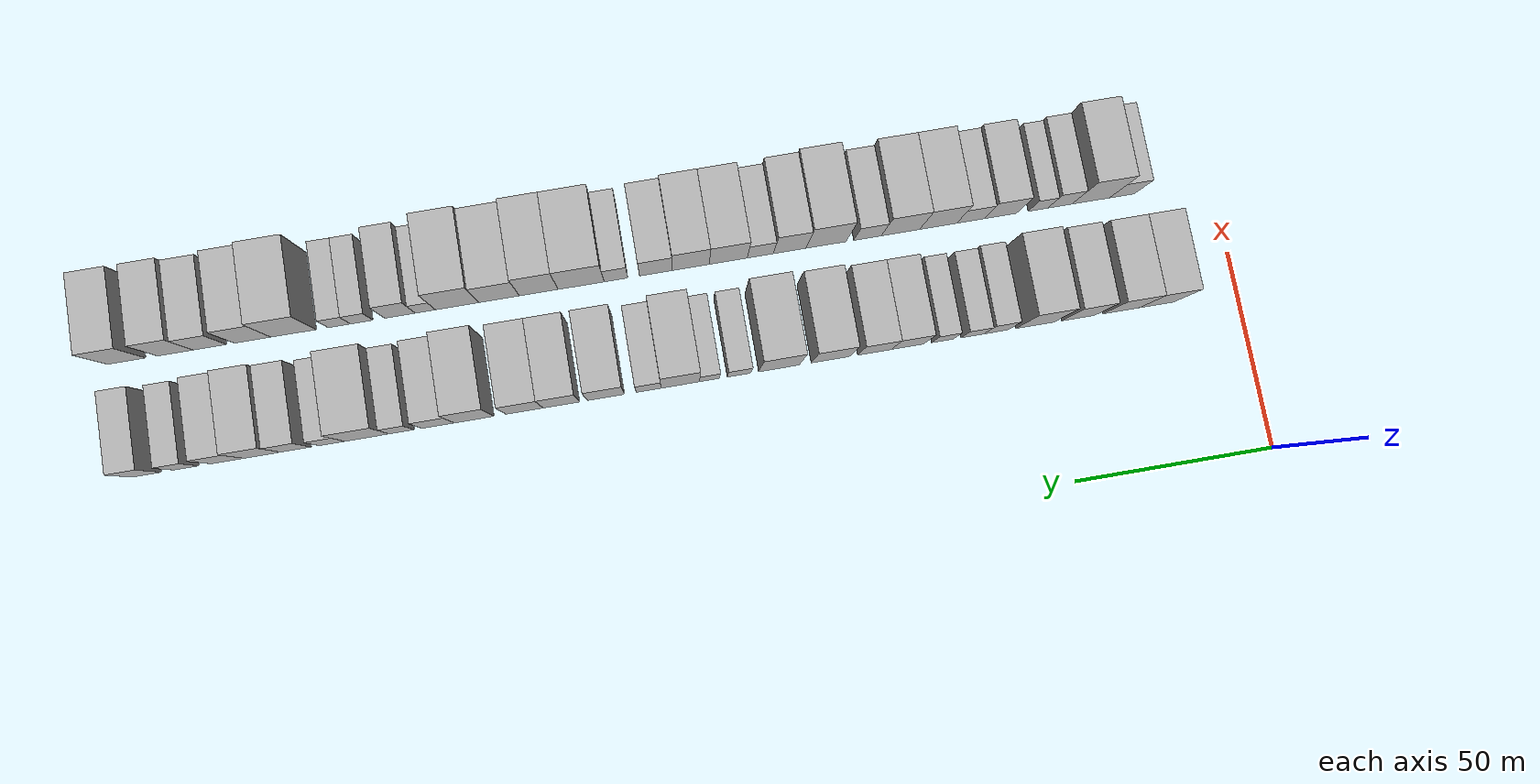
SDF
<sdf version="1.6">
 <world name="default">
  <model name="building_28">
   <static>1</static>
   <pose>50.0000 20.7345 0 0.000000 0.000000 0.000000</pose>
   <link name="link">
    <pose>0 0 10.50 0 0 0</pose>
    <collision name="collision"><geometry><box><size>20.0000 8.9469 21.0000</size></box></geometry></collision>
    <visual name="visual">
     <cast_shadows>0</cast_shadows>
     <geometry><box><size>20.0000 8.9469 21.0000</size></box></geometry>
     <material>
      <script>
       <uri>model://HANNAS_wall/materials/scripts</uri>
       <uri>model://HANNAS_wall/materials/textures</uri>
       <name>vrc/HANNAS_wall</name>
      </script>
     </material>
    </visual>
   </link>
  </model>
  <model name="building_29">
   <static>1</static>
   <pose>50.0000 29.8914 0 0.000000 0.000000 0.000000</pose>
   <link name="link">
    <pose>0 0 10.50 0 0 0</pose>
    <collision name="collision"><geometry><box><size>20.0000 9.3669 21.0000</size></box></geometry></collision>
    <visual name="visual">
     <cast_shadows>0</cast_shadows>
     <geometry><box><size>20.0000 9.3669 21.0000</size></box></geometry>
     <material>
      <script>
       <uri>model://HANNAS_wall/materials/scripts</uri>
       <uri>model://HANNAS_wall/materials/textures</uri>
       <name>vrc/HANNAS_wall</name>
      </script>
     </material>
    </visual>
   </link>
  </model>
  <model name="building_30">
   <static>1</static>
   <pose>50.0000 40.8445 0 0.000000 0.000000 0.000000</pose>
   <link name="link">
    <pose>0 0 10.50 0 0 0</pose>
    <collision name="collision"><geometry><box><size>20.0000 8.5393 21.0000</size></box></geometry></collision>
    <visual name="visual">
     <cast_shadows>0</cast_shadows>
     <geometry><box><size>20.0000 8.5393 21.0000</size></box></geometry>
     <material>
      <script>
       <uri>model://HANNAS_wall/materials/scripts</uri>
       <uri>model://HANNAS_wall/materials/textures</uri>
       <name>vrc/HANNAS_wall</name>
      </script>
     </material>
    </visual>
   </link>
  </model>
  <model name="building_31">
   <static>1</static>
   <pose>50.0000 52.0060 0 0.000000 0.000000 0.000000</pose>
   <link name="link">
    <pose>0 0 12.00 0 0 0</pose>
    <collision name="collision"><geometry><box><size>20.0000 9.7837 24.0000</size></box></geometry></collision>
    <visual name="visual">
     <cast_shadows>0</cast_shadows>
     <geometry><box><size>20.0000 9.7837 24.0000</size></box></geometry>
     <material>
      <script>
       <uri>model://HANNAS_wall/materials/scripts</uri>
       <uri>model://HANNAS_wall/materials/textures</uri>
       <name>vrc/HANNAS_wall</name>
      </script>
     </material>
    </visual>
   </link>
  </model>
  <model name="building_32">
   <static>1</static>
   <pose>50.0000 62.0029 0 0.000000 0.000000 0.000000</pose>
   <link name="link">
    <pose>0 0 7.50 0 0 0</pose>
    <collision name="collision"><geometry><box><size>20.0000 6.2100 15.0000</size></box></geometry></collision>
    <visual name="visual">
     <cast_shadows>0</cast_shadows>
     <geometry><box><size>20.0000 6.2100 15.0000</size></box></geometry>
     <material>
      <script>
       <uri>model://HANNAS_wall/materials/scripts</uri>
       <uri>model://HANNAS_wall/materials/textures</uri>
       <name>vrc/HANNAS_wall</name>
      </script>
     </material>
    </visual>
   </link>
  </model>
  <model name="building_33">
   <static>1</static>
   <pose>50.0000 68.0399 0 0.000000 0.000000 0.000000</pose>
   <link name="link">
    <pose>0 0 6.00 0 0 0</pose>
    <collision name="collision"><geometry><box><size>20.0000 5.8642 12.0000</size></box></geometry></collision>
    <visual name="visual">
     <cast_shadows>0</cast_shadows>
     <geometry><box><size>20.0000 5.8642 12.0000</size></box></geometry>
     <material>
      <script>
       <uri>model://HANNAS_wall/materials/scripts</uri>
       <uri>model://HANNAS_wall/materials/textures</uri>
       <name>vrc/HANNAS_wall</name>
      </script>
     </material>
    </visual>
   </link>
  </model>
  <model name="building_34">
   <static>1</static>
   <pose>50.0000 75.7531 0 0.000000 0.000000 0.000000</pose>
   <link name="link">
    <pose>0 0 6.00 0 0 0</pose>
    <collision name="collision"><geometry><box><size>20.0000 5.5622 12.0000</size></box></geometry></collision>
    <visual name="visual">
     <cast_shadows>0</cast_shadows>
     <geometry><box><size>20.0000 5.5622 12.0000</size></box></geometry>
     <material>
      <script>
       <uri>model://HANNAS_wall/materials/scripts</uri>
       <uri>model://HANNAS_wall/materials/textures</uri>
       <name>vrc/HANNAS_wall</name>
      </script>
     </material>
    </visual>
   </link>
  </model>
  <model name="building_35">
   <static>1</static>
   <pose>50.0000 84.6452 0 0.000000 0.000000 0.000000</pose>
   <link name="link">
    <pose>0 0 9.00 0 0 0</pose>
    <collision name="collision"><geometry><box><size>20.0000 8.2221 18.0000</size></box></geometry></collision>
    <visual name="visual">
     <cast_shadows>0</cast_shadows>
     <geometry><box><size>20.0000 8.2221 18.0000</size></box></geometry>
     <material>
      <script>
       <uri>model://HANNAS_wall/materials/scripts</uri>
       <uri>model://HANNAS_wall/materials/textures</uri>
       <name>vrc/HANNAS_wall</name>
      </script>
     </material>
    </visual>
   </link>
  </model>
  <model name="building_36">
   <static>1</static>
   <pose>50.0000 93.0902 0 0.000000 0.000000 0.000000</pose>
   <link name="link">
    <pose>0 0 9.00 0 0 0</pose>
    <collision name="collision"><geometry><box><size>20.0000 8.6678 18.0000</size></box></geometry></collision>
    <visual name="visual">
     <cast_shadows>0</cast_shadows>
     <geometry><box><size>20.0000 8.6678 18.0000</size></box></geometry>
     <material>
      <script>
       <uri>model://HANNAS_wall/materials/scripts</uri>
       <uri>model://HANNAS_wall/materials/textures</uri>
       <name>vrc/HANNAS_wall</name>
      </script>
     </material>
    </visual>
   </link>
  </model>
  <model name="building_37">
   <static>1</static>
   <pose>50.0000 104.3511 0 0.000000 0.000000 0.000000</pose>
   <link name="link">
    <pose>0 0 10.50 0 0 0</pose>
    <collision name="collision"><geometry><box><size>20.0000 9.8541 21.0000</size></box></geometry></collision>
    <visual name="visual">
     <cast_shadows>0</cast_shadows>
     <geometry><box><size>20.0000 9.8541 21.0000</size></box></geometry>
     <material>
      <script>
       <uri>model://HANNAS_wall/materials/scripts</uri>
       <uri>model://HANNAS_wall/materials/textures</uri>
       <name>vrc/HANNAS_wall</name>
      </script>
     </material>
    </visual>
   </link>
  </model>
  <model name="building_38">
   <static>1</static>
   <pose>50.0000 117.4707 0 0.000000 0.000000 0.000000</pose>
   <link name="link">
    <pose>0 0 12.00 0 0 0</pose>
    <collision name="collision"><geometry><box><size>20.0000 10.3851 24.0000</size></box></geometry></collision>
    <visual name="visual">
     <cast_shadows>0</cast_shadows>
     <geometry><box><size>20.0000 10.3851 24.0000</size></box></geometry>
     <material>
      <script>
       <uri>model://HANNAS_wall/materials/scripts</uri>
       <uri>model://HANNAS_wall/materials/textures</uri>
       <name>vrc/HANNAS_wall</name>
      </script>
     </material>
    </visual>
   </link>
  </model>
  <model name="building_39">
   <static>1</static>
   <pose>50.0000 127.6565 0 0.000000 0.000000 0.000000</pose>
   <link name="link">
    <pose>0 0 6.00 0 0 0</pose>
    <collision name="collision"><geometry><box><size>20.0000 5.9864 12.0000</size></box></geometry></collision>
    <visual name="visual">
     <cast_shadows>0</cast_shadows>
     <geometry><box><size>20.0000 5.9864 12.0000</size></box></geometry>
     <material>
      <script>
       <uri>model://HANNAS_wall/materials/scripts</uri>
       <uri>model://HANNAS_wall/materials/textures</uri>
       <name>vrc/HANNAS_wall</name>
      </script>
     </material>
    </visual>
   </link>
  </model>
  <model name="building_40">
   <static>1</static>
   <pose>50.0000 135.1891 0 0.000000 0.000000 0.000000</pose>
   <link name="link">
    <pose>0 0 6.00 0 0 0</pose>
    <collision name="collision"><geometry><box><size>20.0000 5.0788 12.0000</size></box></geometry></collision>
    <visual name="visual">
     <cast_shadows>0</cast_shadows>
     <geometry><box><size>20.0000 5.0788 12.0000</size></box></geometry>
     <material>
      <script>
       <uri>model://HANNAS_wall/materials/scripts</uri>
       <uri>model://HANNAS_wall/materials/textures</uri>
       <name>vrc/HANNAS_wall</name>
      </script>
     </material>
    </visual>
   </link>
  </model>
  <model name="building_41">
   <static>1</static>
   <pose>50.0000 142.5829 0 0.000000 0.000000 0.000000</pose>
   <link name="link">
    <pose>0 0 12.00 0 0 0</pose>
    <collision name="collision"><geometry><box><size>20.0000 9.7087 24.0000</size></box></geometry></collision>
    <visual name="visual">
     <cast_shadows>0</cast_shadows>
     <geometry><box><size>20.0000 9.7087 24.0000</size></box></geometry>
     <material>
      <script>
       <uri>model://HANNAS_wall/materials/scripts</uri>
       <uri>model://HANNAS_wall/materials/textures</uri>
       <name>vrc/HANNAS_wall</name>
      </script>
     </material>
    </visual>
   </link>
  </model>
  <model name="building_42">
   <static>1</static>
   <pose>50.0000 150.5750 0 0.000000 0.000000 0.000000</pose>
   <link name="link">
    <pose>0 0 7.50 0 0 0</pose>
    <collision name="collision"><geometry><box><size>20.0000 6.2755 15.0000</size></box></geometry></collision>
    <visual name="visual">
     <cast_shadows>0</cast_shadows>
     <geometry><box><size>20.0000 6.2755 15.0000</size></box></geometry>
     <material>
      <script>
       <uri>model://HANNAS_wall/materials/scripts</uri>
       <uri>model://HANNAS_wall/materials/textures</uri>
       <name>vrc/HANNAS_wall</name>
      </script>
     </material>
    </visual>
   </link>
  </model>
  <model name="building_43">
   <static>1</static>
   <pose>50.0000 161.3893 0 0.000000 0.000000 0.000000</pose>
   <link name="link">
    <pose>0 0 10.50 0 0 0</pose>
    <collision name="collision"><geometry><box><size>20.0000 9.3530 21.0000</size></box></geometry></collision>
    <visual name="visual">
     <cast_shadows>0</cast_shadows>
     <geometry><box><size>20.0000 9.3530 21.0000</size></box></geometry>
     <material>
      <script>
       <uri>model://HANNAS_wall/materials/scripts</uri>
       <uri>model://HANNAS_wall/materials/textures</uri>
       <name>vrc/HANNAS_wall</name>
      </script>
     </material>
    </visual>
   </link>
  </model>
  <model name="building_44">
   <static>1</static>
   <pose>50.0000 172.6418 0 0.000000 0.000000 0.000000</pose>
   <link name="link">
    <pose>0 0 10.50 0 0 0</pose>
    <collision name="collision"><geometry><box><size>20.0000 9.1519 21.0000</size></box></geometry></collision>
    <visual name="visual">
     <cast_shadows>0</cast_shadows>
     <geometry><box><size>20.0000 9.1519 21.0000</size></box></geometry>
     <material>
      <script>
       <uri>model://HANNAS_wall/materials/scripts</uri>
       <uri>model://HANNAS_wall/materials/textures</uri>
       <name>vrc/HANNAS_wall</name>
      </script>
     </material>
    </visual>
   </link>
  </model>
  <model name="building_45">
   <static>1</static>
   <pose>50.0000 181.9370 0 0.000000 0.000000 0.000000</pose>
   <link name="link">
    <pose>0 0 10.50 0 0 0</pose>
    <collision name="collision"><geometry><box><size>20.0000 9.4385 21.0000</size></box></geometry></collision>
    <visual name="visual">
     <cast_shadows>0</cast_shadows>
     <geometry><box><size>20.0000 9.4385 21.0000</size></box></geometry>
     <material>
      <script>
       <uri>model://HANNAS_wall/materials/scripts</uri>
       <uri>model://HANNAS_wall/materials/textures</uri>
       <name>vrc/HANNAS_wall</name>
      </script>
     </material>
    </visual>
   </link>
  </model>
  <model name="building_46">
   <static>1</static>
   <pose>50.0000 194.6223 0 0.000000 0.000000 0.000000</pose>
   <link name="link">
    <pose>0 0 12.00 0 0 0</pose>
    <collision name="collision"><geometry><box><size>20.0000 9.9322 24.0000</size></box></geometry></collision>
    <visual name="visual">
     <cast_shadows>0</cast_shadows>
     <geometry><box><size>20.0000 9.9322 24.0000</size></box></geometry>
     <material>
      <script>
       <uri>model://HANNAS_wall/materials/scripts</uri>
       <uri>model://HANNAS_wall/materials/textures</uri>
       <name>vrc/HANNAS_wall</name>
      </script>
     </material>
    </visual>
   </link>
  </model>
  <model name="building_47">
   <static>1</static>
   <pose>50.0000 203.6791 0 0.000000 0.000000 0.000000</pose>
   <link name="link">
    <pose>0 0 9.00 0 0 0</pose>
    <collision name="collision"><geometry><box><size>20.0000 8.1814 18.0000</size></box></geometry></collision>
    <visual name="visual">
     <cast_shadows>0</cast_shadows>
     <geometry><box><size>20.0000 8.1814 18.0000</size></box></geometry>
     <material>
      <script>
       <uri>model://HANNAS_wall/materials/scripts</uri>
       <uri>model://HANNAS_wall/materials/textures</uri>
       <name>vrc/HANNAS_wall</name>
      </script>
     </material>
    </visual>
   </link>
  </model>
  <model name="building_48">
   <static>1</static>
   <pose>50.0000 212.8587 0 0.000000 0.000000 0.000000</pose>
   <link name="link">
    <pose>0 0 7.50 0 0 0</pose>
    <collision name="collision"><geometry><box><size>20.0000 6.1778 15.0000</size></box></geometry></collision>
    <visual name="visual">
     <cast_shadows>0</cast_shadows>
     <geometry><box><size>20.0000 6.1778 15.0000</size></box></geometry>
     <material>
      <script>
       <uri>model://HANNAS_wall/materials/scripts</uri>
       <uri>model://HANNAS_wall/materials/textures</uri>
       <name>vrc/HANNAS_wall</name>
      </script>
     </material>
    </visual>
   </link>
  </model>
  <model name="building_49">
   <static>1</static>
   <pose>50.0000 221.5191 0 0.000000 0.000000 0.000000</pose>
   <link name="link">
    <pose>0 0 12.00 0 0 0</pose>
    <collision name="collision"><geometry><box><size>20.0000 11.1430 24.0000</size></box></geometry></collision>
    <visual name="visual">
     <cast_shadows>0</cast_shadows>
     <geometry><box><size>20.0000 11.1430 24.0000</size></box></geometry>
     <material>
      <script>
       <uri>model://HANNAS_wall/materials/scripts</uri>
       <uri>model://HANNAS_wall/materials/textures</uri>
       <name>vrc/HANNAS_wall</name>
      </script>
     </material>
    </visual>
   </link>
  </model>
  <model name="building_50">
   <static>1</static>
   <pose>50.0000 230.3307 0 0.000000 0.000000 0.000000</pose>
   <link name="link">
    <pose>0 0 7.50 0 0 0</pose>
    <collision name="collision"><geometry><box><size>20.0000 6.4800 15.0000</size></box></geometry></collision>
    <visual name="visual">
     <cast_shadows>0</cast_shadows>
     <geometry><box><size>20.0000 6.4800 15.0000</size></box></geometry>
     <material>
      <script>
       <uri>model://HANNAS_wall/materials/scripts</uri>
       <uri>model://HANNAS_wall/materials/textures</uri>
       <name>vrc/HANNAS_wall</name>
      </script>
     </material>
    </visual>
   </link>
  </model>
  <model name="building_51">
   <static>1</static>
   <pose>50.0000 239.3495 0 0.000000 0.000000 0.000000</pose>
   <link name="link">
    <pose>0 0 9.00 0 0 0</pose>
    <collision name="collision"><geometry><box><size>20.0000 7.5577 18.0000</size></box></geometry></collision>
    <visual name="visual">
     <cast_shadows>0</cast_shadows>
     <geometry><box><size>20.0000 7.5577 18.0000</size></box></geometry>
     <material>
      <script>
       <uri>model://HANNAS_wall/materials/scripts</uri>
       <uri>model://HANNAS_wall/materials/textures</uri>
       <name>vrc/HANNAS_wall</name>
      </script>
     </material>
    </visual>
   </link>
  </model>
  <model name="building_52">
   <static>1</static>
   <pose>50.0000 247.7232 0 0.000000 0.000000 0.000000</pose>
   <link name="link">
    <pose>0 0 10.50 0 0 0</pose>
    <collision name="collision"><geometry><box><size>20.0000 9.1896 21.0000</size></box></geometry></collision>
    <visual name="visual">
     <cast_shadows>0</cast_shadows>
     <geometry><box><size>20.0000 9.1896 21.0000</size></box></geometry>
     <material>
      <script>
       <uri>model://HANNAS_wall/materials/scripts</uri>
       <uri>model://HANNAS_wall/materials/textures</uri>
       <name>vrc/HANNAS_wall</name>
      </script>
     </material>
    </visual>
   </link>
  </model>
  <model name="building_53">
   <static>1</static>
   <pose>50.0000 256.4571 0 0.000000 0.000000 0.000000</pose>
   <link name="link">
    <pose>0 0 9.00 0 0 0</pose>
    <collision name="collision"><geometry><box><size>20.0000 8.2782 18.0000</size></box></geometry></collision>
    <visual name="visual">
     <cast_shadows>0</cast_shadows>
     <geometry><box><size>20.0000 8.2782 18.0000</size></box></geometry>
     <material>
      <script>
       <uri>model://HANNAS_wall/materials/scripts</uri>
       <uri>model://HANNAS_wall/materials/textures</uri>
       <name>vrc/HANNAS_wall</name>
      </script>
     </material>
    </visual>
   </link>
  </model>
  <model name="building_54">
   <static>1</static>
   <pose>50.0000 266.7595 0 0.000000 0.000000 0.000000</pose>
   <link name="link">
    <pose>0 0 7.50 0 0 0</pose>
    <collision name="collision"><geometry><box><size>20.0000 6.3266 15.0000</size></box></geometry></collision>
    <visual name="visual">
     <cast_shadows>0</cast_shadows>
     <geometry><box><size>20.0000 6.3266 15.0000</size></box></geometry>
     <material>
      <script>
       <uri>model://HANNAS_wall/materials/scripts</uri>
       <uri>model://HANNAS_wall/materials/textures</uri>
       <name>vrc/HANNAS_wall</name>
      </script>
     </material>
    </visual>
   </link>
  </model>
  <model name="building_55">
   <static>1</static>
   <pose>50.0000 276.5610 0 0.000000 0.000000 0.000000</pose>
   <link name="link">
    <pose>0 0 9.00 0 0 0</pose>
    <collision name="collision"><geometry><box><size>20.0000 7.2764 18.0000</size></box></geometry></collision>
    <visual name="visual">
     <cast_shadows>0</cast_shadows>
     <geometry><box><size>20.0000 7.2764 18.0000</size></box></geometry>
     <material>
      <script>
       <uri>model://HANNAS_wall/materials/scripts</uri>
       <uri>model://HANNAS_wall/materials/textures</uri>
       <name>vrc/HANNAS_wall</name>
      </script>
     </material>
    </visual>
   </link>
  </model>
  <model name="building_85">
   <static>1</static>
   <pose>79.0000 23.2335 0 0.000000 0.000000 0.000000</pose>
   <link name="link">
    <pose>0 0 7.50 0 0 0</pose>
    <collision name="collision"><geometry><box><size>20.0000 6.5264 15.0000</size></box></geometry></collision>
    <visual name="visual">
     <cast_shadows>0</cast_shadows>
     <geometry><box><size>20.0000 6.5264 15.0000</size></box></geometry>
     <material>
      <script>
       <uri>model://HANNAS_wall/materials/scripts</uri>
       <uri>model://HANNAS_wall/materials/textures</uri>
       <name>vrc/HANNAS_wall</name>
      </script>
     </material>
    </visual>
   </link>
  </model>
  <model name="building_86">
   <static>1</static>
   <pose>79.0000 31.4439 0 0.000000 0.000000 0.000000</pose>
   <link name="link">
    <pose>0 0 12.00 0 0 0</pose>
    <collision name="collision"><geometry><box><size>20.0000 9.8944 24.0000</size></box></geometry></collision>
    <visual name="visual">
     <cast_shadows>0</cast_shadows>
     <geometry><box><size>20.0000 9.8944 24.0000</size></box></geometry>
     <material>
      <script>
       <uri>model://HANNAS_wall/materials/scripts</uri>
       <uri>model://HANNAS_wall/materials/textures</uri>
       <name>vrc/HANNAS_wall</name>
      </script>
     </material>
    </visual>
   </link>
  </model>
  <model name="building_87">
   <static>1</static>
   <pose>79.0000 39.5365 0 0.000000 0.000000 0.000000</pose>
   <link name="link">
    <pose>0 0 7.50 0 0 0</pose>
    <collision name="collision"><geometry><box><size>20.0000 6.2909 15.0000</size></box></geometry></collision>
    <visual name="visual">
     <cast_shadows>0</cast_shadows>
     <geometry><box><size>20.0000 6.2909 15.0000</size></box></geometry>
     <material>
      <script>
       <uri>model://HANNAS_wall/materials/scripts</uri>
       <uri>model://HANNAS_wall/materials/textures</uri>
       <name>vrc/HANNAS_wall</name>
      </script>
     </material>
    </visual>
   </link>
  </model>
  <model name="building_88">
   <static>1</static>
   <pose>79.0000 45.2135 0 0.000000 0.000000 0.000000</pose>
   <link name="link">
    <pose>0 0 6.00 0 0 0</pose>
    <collision name="collision"><geometry><box><size>20.0000 5.0632 12.0000</size></box></geometry></collision>
    <visual name="visual">
     <cast_shadows>0</cast_shadows>
     <geometry><box><size>20.0000 5.0632 12.0000</size></box></geometry>
     <material>
      <script>
       <uri>model://HANNAS_wall/materials/scripts</uri>
       <uri>model://HANNAS_wall/materials/textures</uri>
       <name>vrc/HANNAS_wall</name>
      </script>
     </material>
    </visual>
   </link>
  </model>
  <model name="building_89">
   <static>1</static>
   <pose>79.0000 54.9448 0 0.000000 0.000000 0.000000</pose>
   <link name="link">
    <pose>0 0 9.00 0 0 0</pose>
    <collision name="collision"><geometry><box><size>20.0000 8.3993 18.0000</size></box></geometry></collision>
    <visual name="visual">
     <cast_shadows>0</cast_shadows>
     <geometry><box><size>20.0000 8.3993 18.0000</size></box></geometry>
     <material>
      <script>
       <uri>model://HANNAS_wall/materials/scripts</uri>
       <uri>model://HANNAS_wall/materials/textures</uri>
       <name>vrc/HANNAS_wall</name>
      </script>
     </material>
    </visual>
   </link>
  </model>
  <model name="building_90">
   <static>1</static>
   <pose>79.0000 62.7253 0 0.000000 0.000000 0.000000</pose>
   <link name="link">
    <pose>0 0 7.50 0 0 0</pose>
    <collision name="collision"><geometry><box><size>20.0000 7.1617 15.0000</size></box></geometry></collision>
    <visual name="visual">
     <cast_shadows>0</cast_shadows>
     <geometry><box><size>20.0000 7.1617 15.0000</size></box></geometry>
     <material>
      <script>
       <uri>model://HANNAS_wall/materials/scripts</uri>
       <uri>model://HANNAS_wall/materials/textures</uri>
       <name>vrc/HANNAS_wall</name>
      </script>
     </material>
    </visual>
   </link>
  </model>
  <model name="building_91">
   <static>1</static>
   <pose>79.0000 71.1108 0 0.000000 0.000000 0.000000</pose>
   <link name="link">
    <pose>0 0 10.50 0 0 0</pose>
    <collision name="collision"><geometry><box><size>20.0000 9.6092 21.0000</size></box></geometry></collision>
    <visual name="visual">
     <cast_shadows>0</cast_shadows>
     <geometry><box><size>20.0000 9.6092 21.0000</size></box></geometry>
     <material>
      <script>
       <uri>model://HANNAS_wall/materials/scripts</uri>
       <uri>model://HANNAS_wall/materials/textures</uri>
       <name>vrc/HANNAS_wall</name>
      </script>
     </material>
    </visual>
   </link>
  </model>
  <model name="building_92">
   <static>1</static>
   <pose>79.0000 80.8841 0 0.000000 0.000000 0.000000</pose>
   <link name="link">
    <pose>0 0 10.50 0 0 0</pose>
    <collision name="collision"><geometry><box><size>20.0000 9.9374 21.0000</size></box></geometry></collision>
    <visual name="visual">
     <cast_shadows>0</cast_shadows>
     <geometry><box><size>20.0000 9.9374 21.0000</size></box></geometry>
     <material>
      <script>
       <uri>model://HANNAS_wall/materials/scripts</uri>
       <uri>model://HANNAS_wall/materials/textures</uri>
       <name>vrc/HANNAS_wall</name>
      </script>
     </material>
    </visual>
   </link>
  </model>
  <model name="building_93">
   <static>1</static>
   <pose>79.0000 89.4161 0 0.000000 0.000000 0.000000</pose>
   <link name="link">
    <pose>0 0 7.50 0 0 0</pose>
    <collision name="collision"><geometry><box><size>20.0000 7.1265 15.0000</size></box></geometry></collision>
    <visual name="visual">
     <cast_shadows>0</cast_shadows>
     <geometry><box><size>20.0000 7.1265 15.0000</size></box></geometry>
     <material>
      <script>
       <uri>model://HANNAS_wall/materials/scripts</uri>
       <uri>model://HANNAS_wall/materials/textures</uri>
       <name>vrc/HANNAS_wall</name>
      </script>
     </material>
    </visual>
   </link>
  </model>
  <model name="building_94">
   <static>1</static>
   <pose>79.0000 100.1524 0 0.000000 0.000000 0.000000</pose>
   <link name="link">
    <pose>0 0 12.00 0 0 0</pose>
    <collision name="collision"><geometry><box><size>20.0000 10.3462 24.0000</size></box></geometry></collision>
    <visual name="visual">
     <cast_shadows>0</cast_shadows>
     <geometry><box><size>20.0000 10.3462 24.0000</size></box></geometry>
     <material>
      <script>
       <uri>model://HANNAS_wall/materials/scripts</uri>
       <uri>model://HANNAS_wall/materials/textures</uri>
       <name>vrc/HANNAS_wall</name>
      </script>
     </material>
    </visual>
   </link>
  </model>
  <model name="building_95">
   <static>1</static>
   <pose>79.0000 109.5573 0 0.000000 0.000000 0.000000</pose>
   <link name="link">
    <pose>0 0 10.50 0 0 0</pose>
    <collision name="collision"><geometry><box><size>20.0000 8.4636 21.0000</size></box></geometry></collision>
    <visual name="visual">
     <cast_shadows>0</cast_shadows>
     <geometry><box><size>20.0000 8.4636 21.0000</size></box></geometry>
     <material>
      <script>
       <uri>model://HANNAS_wall/materials/scripts</uri>
       <uri>model://HANNAS_wall/materials/textures</uri>
       <name>vrc/HANNAS_wall</name>
      </script>
     </material>
    </visual>
   </link>
  </model>
  <model name="building_96">
   <static>1</static>
   <pose>79.0000 117.1414 0 0.000000 0.000000 0.000000</pose>
   <link name="link">
    <pose>0 0 7.50 0 0 0</pose>
    <collision name="collision"><geometry><box><size>20.0000 6.7045 15.0000</size></box></geometry></collision>
    <visual name="visual">
     <cast_shadows>0</cast_shadows>
     <geometry><box><size>20.0000 6.7045 15.0000</size></box></geometry>
     <material>
      <script>
       <uri>model://HANNAS_wall/materials/scripts</uri>
       <uri>model://HANNAS_wall/materials/textures</uri>
       <name>vrc/HANNAS_wall</name>
      </script>
     </material>
    </visual>
   </link>
  </model>
  <model name="building_97">
   <static>1</static>
   <pose>79.0000 125.3807 0 0.000000 0.000000 0.000000</pose>
   <link name="link">
    <pose>0 0 10.50 0 0 0</pose>
    <collision name="collision"><geometry><box><size>20.0000 9.7743 21.0000</size></box></geometry></collision>
    <visual name="visual">
     <cast_shadows>0</cast_shadows>
     <geometry><box><size>20.0000 9.7743 21.0000</size></box></geometry>
     <material>
      <script>
       <uri>model://HANNAS_wall/materials/scripts</uri>
       <uri>model://HANNAS_wall/materials/textures</uri>
       <name>vrc/HANNAS_wall</name>
      </script>
     </material>
    </visual>
   </link>
  </model>
  <model name="building_98">
   <static>1</static>
   <pose>79.0000 135.0094 0 0.000000 0.000000 0.000000</pose>
   <link name="link">
    <pose>0 0 10.50 0 0 0</pose>
    <collision name="collision"><geometry><box><size>20.0000 9.4831 21.0000</size></box></geometry></collision>
    <visual name="visual">
     <cast_shadows>0</cast_shadows>
     <geometry><box><size>20.0000 9.4831 21.0000</size></box></geometry>
     <material>
      <script>
       <uri>model://HANNAS_wall/materials/scripts</uri>
       <uri>model://HANNAS_wall/materials/textures</uri>
       <name>vrc/HANNAS_wall</name>
      </script>
     </material>
    </visual>
   </link>
  </model>
  <model name="building_99">
   <static>1</static>
   <pose>79.0000 143.9548 0 0.000000 0.000000 0.000000</pose>
   <link name="link">
    <pose>0 0 9.00 0 0 0</pose>
    <collision name="collision"><geometry><box><size>20.0000 8.4078 18.0000</size></box></geometry></collision>
    <visual name="visual">
     <cast_shadows>0</cast_shadows>
     <geometry><box><size>20.0000 8.4078 18.0000</size></box></geometry>
     <material>
      <script>
       <uri>model://HANNAS_wall/materials/scripts</uri>
       <uri>model://HANNAS_wall/materials/textures</uri>
       <name>vrc/HANNAS_wall</name>
      </script>
     </material>
    </visual>
   </link>
  </model>
  <model name="building_100">
   <static>1</static>
   <pose>79.0000 154.1749 0 0.000000 0.000000 0.000000</pose>
   <link name="link">
    <pose>0 0 7.50 0 0 0</pose>
    <collision name="collision"><geometry><box><size>20.0000 6.0323 15.0000</size></box></geometry></collision>
    <visual name="visual">
     <cast_shadows>0</cast_shadows>
     <geometry><box><size>20.0000 6.0323 15.0000</size></box></geometry>
     <material>
      <script>
       <uri>model://HANNAS_wall/materials/scripts</uri>
       <uri>model://HANNAS_wall/materials/textures</uri>
       <name>vrc/HANNAS_wall</name>
      </script>
     </material>
    </visual>
   </link>
  </model>
  <model name="building_101">
   <static>1</static>
   <pose>79.0000 163.0858 0 0.000000 0.000000 0.000000</pose>
   <link name="link">
    <pose>0 0 12.00 0 0 0</pose>
    <collision name="collision"><geometry><box><size>20.0000 11.7895 24.0000</size></box></geometry></collision>
    <visual name="visual">
     <cast_shadows>0</cast_shadows>
     <geometry><box><size>20.0000 11.7895 24.0000</size></box></geometry>
     <material>
      <script>
       <uri>model://HANNAS_wall/materials/scripts</uri>
       <uri>model://HANNAS_wall/materials/textures</uri>
       <name>vrc/HANNAS_wall</name>
      </script>
     </material>
    </visual>
   </link>
  </model>
  <model name="building_102">
   <static>1</static>
   <pose>79.0000 173.9194 0 0.000000 0.000000 0.000000</pose>
   <link name="link">
    <pose>0 0 12.00 0 0 0</pose>
    <collision name="collision"><geometry><box><size>20.0000 9.8777 24.0000</size></box></geometry></collision>
    <visual name="visual">
     <cast_shadows>0</cast_shadows>
     <geometry><box><size>20.0000 9.8777 24.0000</size></box></geometry>
     <material>
      <script>
       <uri>model://HANNAS_wall/materials/scripts</uri>
       <uri>model://HANNAS_wall/materials/textures</uri>
       <name>vrc/HANNAS_wall</name>
      </script>
     </material>
    </visual>
   </link>
  </model>
  <model name="building_103">
   <static>1</static>
   <pose>79.0000 184.0838 0 0.000000 0.000000 0.000000</pose>
   <link name="link">
    <pose>0 0 10.50 0 0 0</pose>
    <collision name="collision"><geometry><box><size>20.0000 10.4511 21.0000</size></box></geometry></collision>
    <visual name="visual">
     <cast_shadows>0</cast_shadows>
     <geometry><box><size>20.0000 10.4511 21.0000</size></box></geometry>
     <material>
      <script>
       <uri>model://HANNAS_wall/materials/scripts</uri>
       <uri>model://HANNAS_wall/materials/textures</uri>
       <name>vrc/HANNAS_wall</name>
      </script>
     </material>
    </visual>
   </link>
  </model>
  <model name="building_104">
   <static>1</static>
   <pose>79.0000 194.8080 0 0.000000 0.000000 0.000000</pose>
   <link name="link">
    <pose>0 0 12.00 0 0 0</pose>
    <collision name="collision"><geometry><box><size>20.0000 10.9971 24.0000</size></box></geometry></collision>
    <visual name="visual">
     <cast_shadows>0</cast_shadows>
     <geometry><box><size>20.0000 10.9971 24.0000</size></box></geometry>
     <material>
      <script>
       <uri>model://HANNAS_wall/materials/scripts</uri>
       <uri>model://HANNAS_wall/materials/textures</uri>
       <name>vrc/HANNAS_wall</name>
      </script>
     </material>
    </visual>
   </link>
  </model>
  <model name="building_105">
   <static>1</static>
   <pose>79.0000 202.8714 0 0.000000 0.000000 0.000000</pose>
   <link name="link">
    <pose>0 0 6.00 0 0 0</pose>
    <collision name="collision"><geometry><box><size>20.0000 5.1299 12.0000</size></box></geometry></collision>
    <visual name="visual">
     <cast_shadows>0</cast_shadows>
     <geometry><box><size>20.0000 5.1299 12.0000</size></box></geometry>
     <material>
      <script>
       <uri>model://HANNAS_wall/materials/scripts</uri>
       <uri>model://HANNAS_wall/materials/textures</uri>
       <name>vrc/HANNAS_wall</name>
      </script>
     </material>
    </visual>
   </link>
  </model>
  <model name="building_106">
   <static>1</static>
   <pose>79.0000 209.3170 0 0.000000 0.000000 0.000000</pose>
   <link name="link">
    <pose>0 0 9.00 0 0 0</pose>
    <collision name="collision"><geometry><box><size>20.0000 7.7613 18.0000</size></box></geometry></collision>
    <visual name="visual">
     <cast_shadows>0</cast_shadows>
     <geometry><box><size>20.0000 7.7613 18.0000</size></box></geometry>
     <material>
      <script>
       <uri>model://HANNAS_wall/materials/scripts</uri>
       <uri>model://HANNAS_wall/materials/textures</uri>
       <name>vrc/HANNAS_wall</name>
      </script>
     </material>
    </visual>
   </link>
  </model>
  <model name="building_107">
   <static>1</static>
   <pose>79.0000 219.0517 0 0.000000 0.000000 0.000000</pose>
   <link name="link">
    <pose>0 0 6.00 0 0 0</pose>
    <collision name="collision"><geometry><box><size>20.0000 5.7080 12.0000</size></box></geometry></collision>
    <visual name="visual">
     <cast_shadows>0</cast_shadows>
     <geometry><box><size>20.0000 5.7080 12.0000</size></box></geometry>
     <material>
      <script>
       <uri>model://HANNAS_wall/materials/scripts</uri>
       <uri>model://HANNAS_wall/materials/textures</uri>
       <name>vrc/HANNAS_wall</name>
      </script>
     </material>
    </visual>
   </link>
  </model>
  <model name="building_108">
   <static>1</static>
   <pose>79.0000 224.7447 0 0.000000 0.000000 0.000000</pose>
   <link name="link">
    <pose>0 0 6.00 0 0 0</pose>
    <collision name="collision"><geometry><box><size>20.0000 5.6780 12.0000</size></box></geometry></collision>
    <visual name="visual">
     <cast_shadows>0</cast_shadows>
     <geometry><box><size>20.0000 5.6780 12.0000</size></box></geometry>
     <material>
      <script>
       <uri>model://HANNAS_wall/materials/scripts</uri>
       <uri>model://HANNAS_wall/materials/textures</uri>
       <name>vrc/HANNAS_wall</name>
      </script>
     </material>
    </visual>
   </link>
  </model>
  <model name="building_109">
   <static>1</static>
   <pose>79.0000 236.3386 0 0.000000 0.000000 0.000000</pose>
   <link name="link">
    <pose>0 0 12.00 0 0 0</pose>
    <collision name="collision"><geometry><box><size>20.0000 11.5098 24.0000</size></box></geometry></collision>
    <visual name="visual">
     <cast_shadows>0</cast_shadows>
     <geometry><box><size>20.0000 11.5098 24.0000</size></box></geometry>
     <material>
      <script>
       <uri>model://HANNAS_wall/materials/scripts</uri>
       <uri>model://HANNAS_wall/materials/textures</uri>
       <name>vrc/HANNAS_wall</name>
      </script>
     </material>
    </visual>
   </link>
  </model>
  <model name="building_110">
   <static>1</static>
   <pose>79.0000 246.7069 0 0.000000 0.000000 0.000000</pose>
   <link name="link">
    <pose>0 0 10.50 0 0 0</pose>
    <collision name="collision"><geometry><box><size>20.0000 9.2268 21.0000</size></box></geometry></collision>
    <visual name="visual">
     <cast_shadows>0</cast_shadows>
     <geometry><box><size>20.0000 9.2268 21.0000</size></box></geometry>
     <material>
      <script>
       <uri>model://HANNAS_wall/materials/scripts</uri>
       <uri>model://HANNAS_wall/materials/textures</uri>
       <name>vrc/HANNAS_wall</name>
      </script>
     </material>
    </visual>
   </link>
  </model>
  <model name="building_111">
   <static>1</static>
   <pose>79.0000 257.5002 0 0.000000 0.000000 0.000000</pose>
   <link name="link">
    <pose>0 0 9.00 0 0 0</pose>
    <collision name="collision"><geometry><box><size>20.0000 8.3599 18.0000</size></box></geometry></collision>
    <visual name="visual">
     <cast_shadows>0</cast_shadows>
     <geometry><box><size>20.0000 8.3599 18.0000</size></box></geometry>
     <material>
      <script>
       <uri>model://HANNAS_wall/materials/scripts</uri>
       <uri>model://HANNAS_wall/materials/textures</uri>
       <name>vrc/HANNAS_wall</name>
      </script>
     </material>
    </visual>
   </link>
  </model>
  <model name="building_112">
   <static>1</static>
   <pose>79.0000 266.2111 0 0.000000 0.000000 0.000000</pose>
   <link name="link">
    <pose>0 0 10.50 0 0 0</pose>
    <collision name="collision"><geometry><box><size>20.0000 9.0618 21.0000</size></box></geometry></collision>
    <visual name="visual">
     <cast_shadows>0</cast_shadows>
     <geometry><box><size>20.0000 9.0618 21.0000</size></box></geometry>
     <material>
      <script>
       <uri>model://HANNAS_wall/materials/scripts</uri>
       <uri>model://HANNAS_wall/materials/textures</uri>
       <name>vrc/HANNAS_wall</name>
      </script>
     </material>
    </visual>
   </link>
  </model>
  <model name="building_113">
   <static>1</static>
   <pose>79.0000 278.5878 0 0.000000 0.000000 0.000000</pose>
   <link name="link">
    <pose>0 0 10.50 0 0 0</pose>
    <collision name="collision"><geometry><box><size>20.0000 9.6917 21.0000</size></box></geometry></collision>
    <visual name="visual">
     <cast_shadows>0</cast_shadows>
     <geometry><box><size>20.0000 9.6917 21.0000</size></box></geometry>
     <material>
      <script>
       <uri>model://HANNAS_wall/materials/scripts</uri>
       <uri>model://HANNAS_wall/materials/textures</uri>
       <name>vrc/HANNAS_wall</name>
      </script>
     </material>
    </visual>
   </link>
  </model>
 </world>
</sdf>
